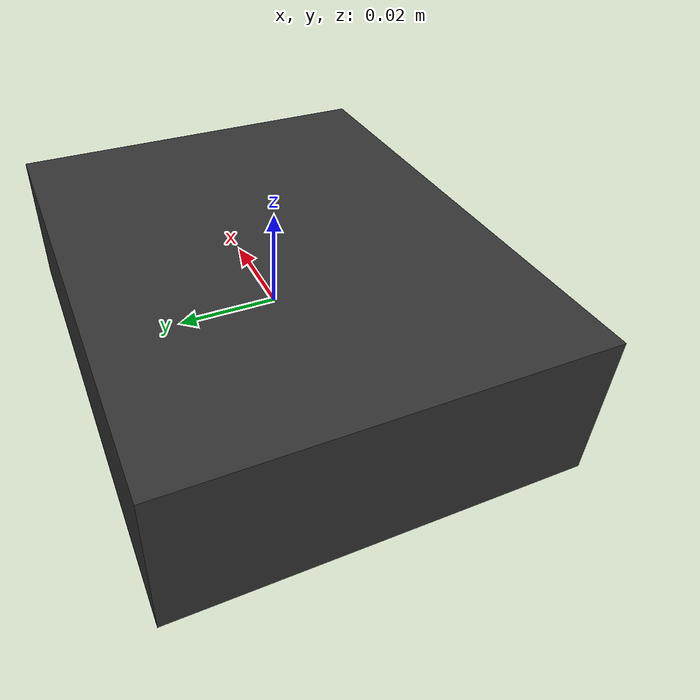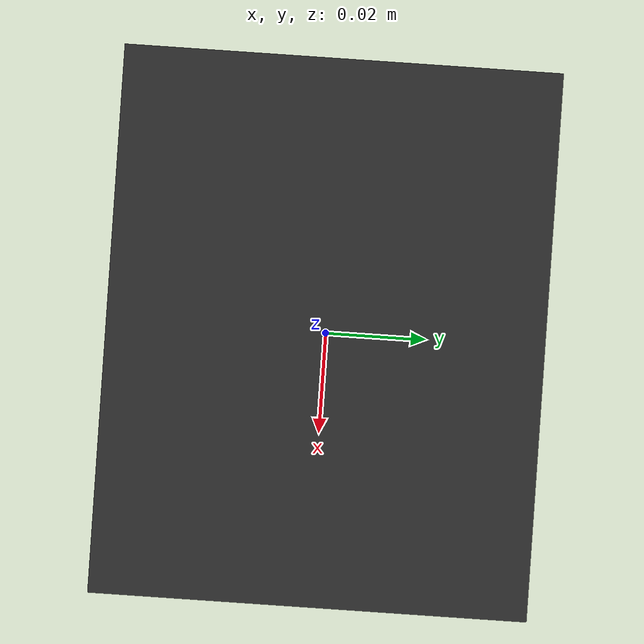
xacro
<robot xmlns:xacro="http://www.ros.org/wiki/xacro"
       name="ronex">

  <material name="Grey">
    <color rgba="0.2 0.2 0.2 1.0"/>
  </material>

  <link name="ronex_box">
    <inertial>
      <mass value="0.010" />
      <origin xyz="0 0 0" />
      <inertia  ixx="0.1" ixy="0.0"  ixz="0.0"  iyy="0.1"  iyz="0.0" izz="0.0" />
    </inertial>
    <visual>
      <origin xyz="0 0 0" rpy="0 0 0" />
      <geometry name="ronex_visual">
        <box size="0.1 .08 .03"/>
        <!-- mesh filename="package://sr_ronex_launch/loaders/ronex.dae" scale="0.001 0.001 0.001" /-->
      </geometry>
      <material name="Grey" />
    </visual>
    <collision>
      <origin xyz="0 0 0" rpy="0 0 0" />
      <geometry name="ronex_collision_geom">
        <box size="0.1 .08 .03"/>
        <!-- mesh filename="package://sr_ronex_launch/loaders/ronex.dae" scale="0.001 0.001 0.001" /-->
      </geometry>
    </collision>
  </link>

</robot>
